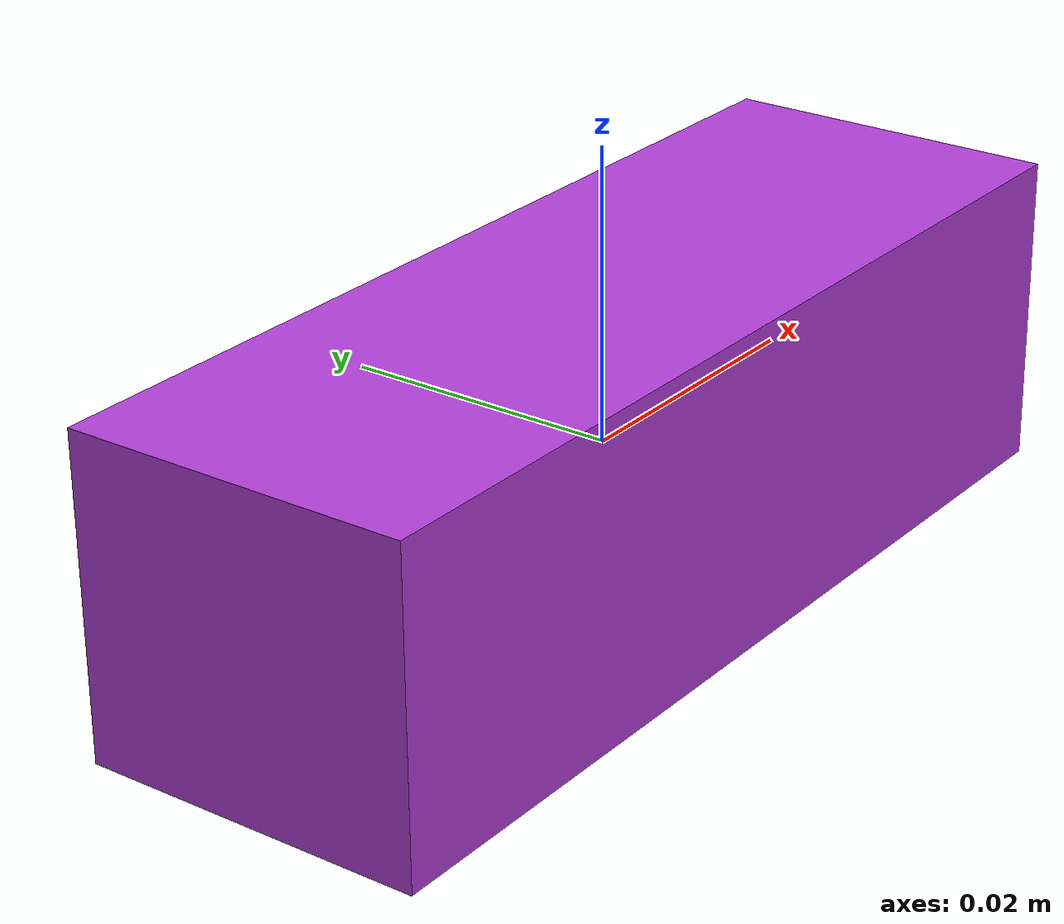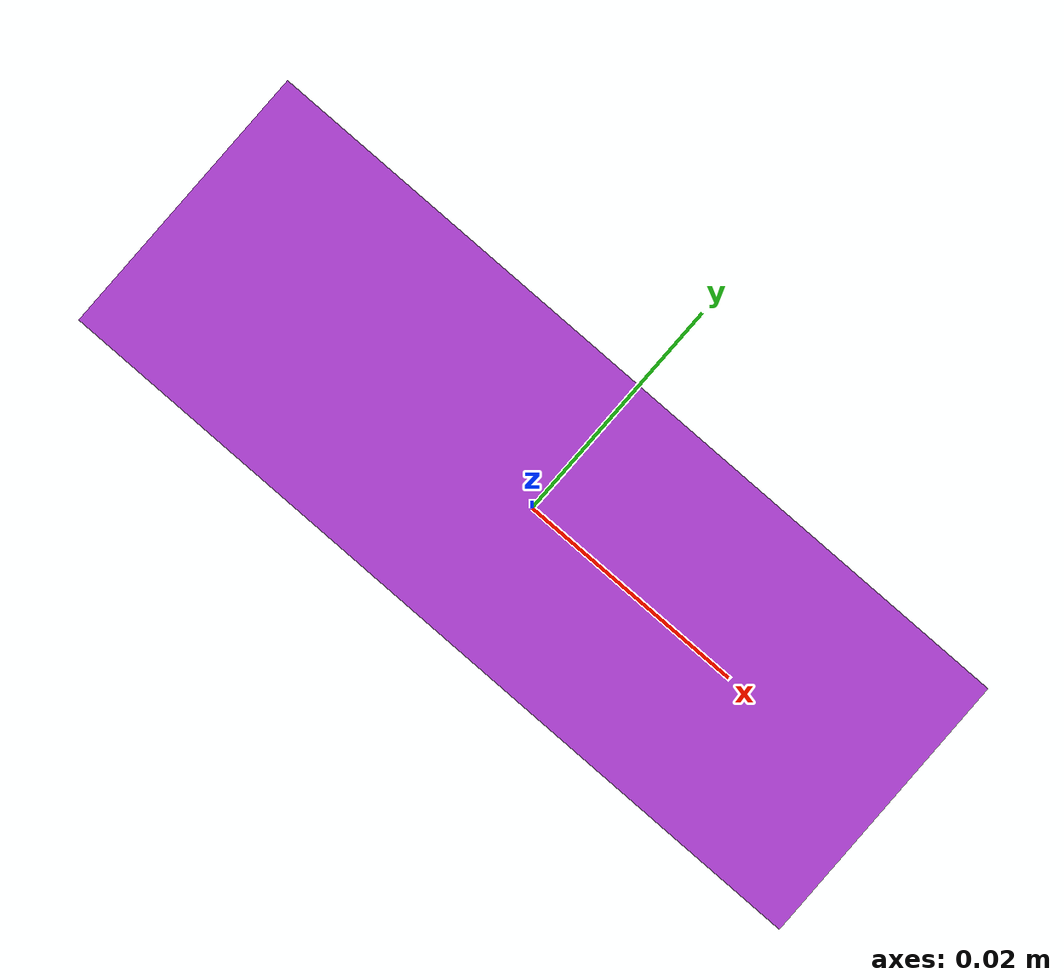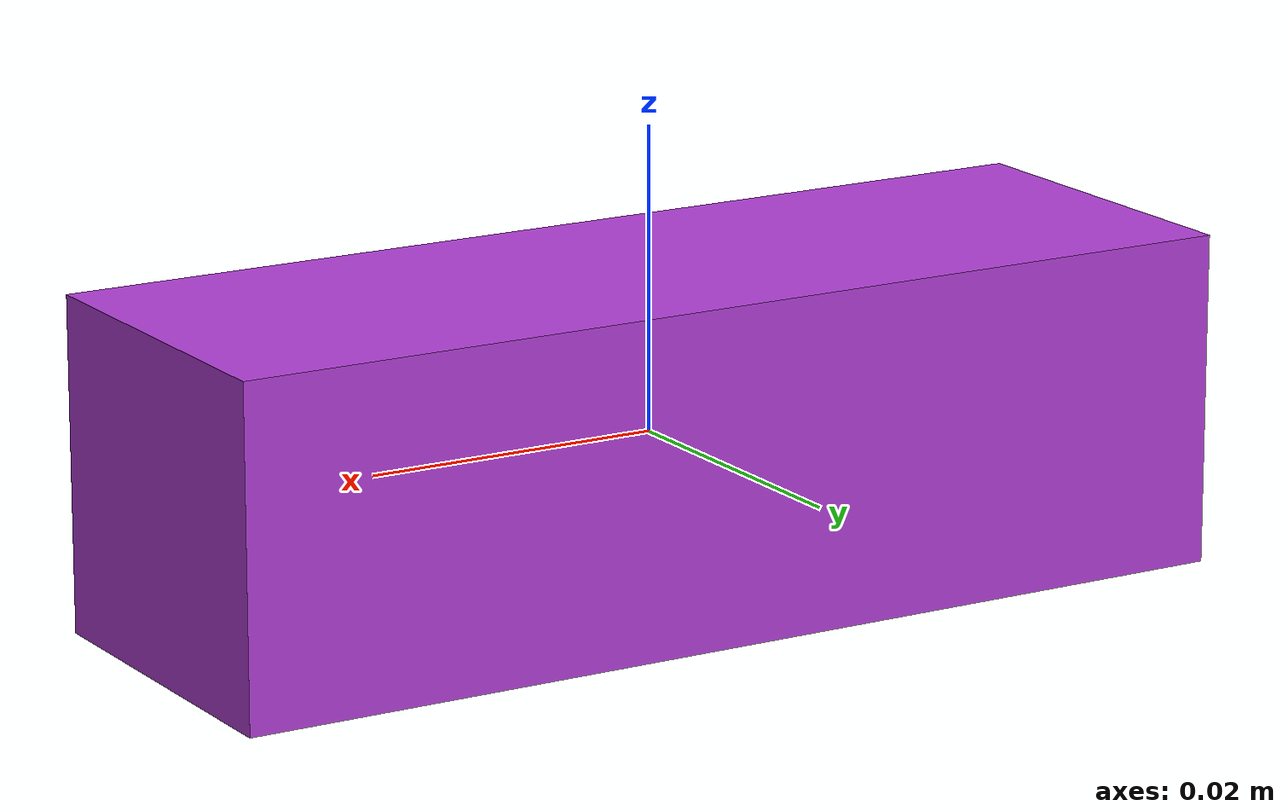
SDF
<?xml version="1.0"?>
<sdf version="1.9">
  <model name="m8_rect_box_3x1">
    <static>false</static>
    <link name="body">
      <inertial><mass>0.035</mass><inertia><ixx>0.000005</ixx><iyy>0.000005</iyy><izz>0.000005</izz></inertia></inertial>
      <visual name="visual"><geometry><box><size>0.070 0.024 0.022</size></box></geometry><material><ambient>0.7 0.25 0.85 1</ambient><diffuse>0.7 0.25 0.85 1</diffuse></material></visual>
      <collision name="collision"><geometry><box><size>0.070 0.024 0.022</size></box></geometry><surface><friction><ode><mu>1.5</mu><mu2>1.5</mu2></ode></friction><contact><ode><kp>1000000.0</kp><kd>10.0</kd></ode></contact></surface></collision>
    </link>
  </model>
</sdf>
